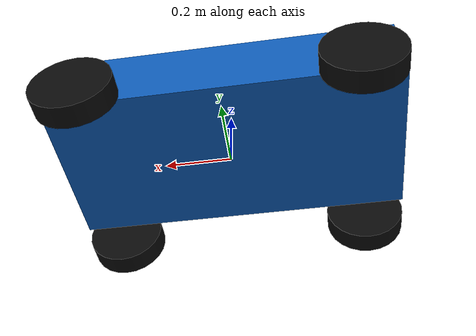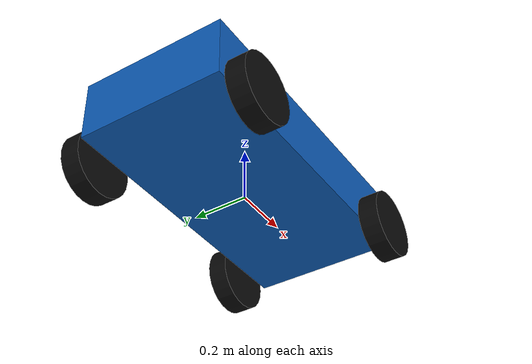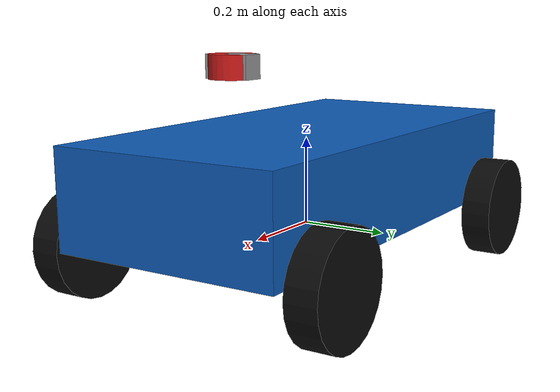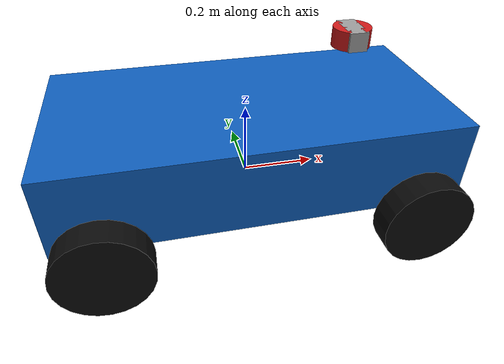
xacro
<?xml version="1.0"?>
<robot name="course_ackermann" xmlns:xacro="http://www.ros.org/wiki/xacro">

  <!-- размеры из models/course_ackermann/model.sdf, единицы СИ (м, кг) -->
  <xacro:property name="wheel_base" value="0.8"/>
  <xacro:property name="track" value="0.62"/>
  <xacro:property name="wheel_radius" value="0.12"/>
  <xacro:property name="wheel_width" value="0.07"/>
  <xacro:property name="wheel_mass" value="0.8"/>

  <xacro:property name="body_length" value="1.05"/>
  <xacro:property name="body_width" value="0.52"/>
  <xacro:property name="body_height" value="0.22"/>
  <xacro:property name="body_z" value="0.12"/>
  <xacro:property name="body_mass" value="12.0"/>

  <xacro:property name="knuckle_mass" value="0.2"/>
  <xacro:property name="steering_limit" value="0.55"/>

  <xacro:property name="sensor_x" value="0.28"/>
  <xacro:property name="sensor_z" value="0.38"/>
  <xacro:property name="sensor_size" value="0.05"/>
  <xacro:property name="sensor_mass" value="0.0333"/>

  <xacro:macro name="box_inertia" params="m x y z">
    <inertial>
      <mass value="${m}"/>
      <inertia ixx="${m * (y*y + z*z) / 12}" ixy="0" ixz="0"
               iyy="${m * (x*x + z*z) / 12}" iyz="0"
               izz="${m * (x*x + y*y) / 12}"/>
    </inertial>
  </xacro:macro>

  <!-- корпус: начало base_link на оси колёс -->
  <link name="base_link">
    <visual>
      <origin xyz="0 0 ${body_z}"/>
      <geometry><box size="${body_length} ${body_width} ${body_height}"/></geometry>
      <material name="blue"><color rgba="0.05 0.36 0.72 1"/></material>
    </visual>
    <collision>
      <origin xyz="0 0 ${body_z}"/>
      <geometry><box size="${body_length} ${body_width} ${body_height}"/></geometry>
    </collision>
    <inertial>
      <origin xyz="0 0 ${body_z}"/>
      <mass value="${body_mass}"/>
      <inertia ixx="0.55" ixy="0" ixz="0" iyy="1.10" iyz="0" izz="1.40"/>
    </inertial>
  </link>

  <!-- колесо: ось вращения y, цилиндр повёрнут на 90 градусов вокруг x -->
  <xacro:macro name="wheel" params="name parent x y">
    <link name="${name}_wheel">
      <visual>
        <origin rpy="${pi/2} 0 0"/>
        <geometry><cylinder radius="${wheel_radius}" length="${wheel_width}"/></geometry>
        <material name="black"><color rgba="0.04 0.04 0.04 1"/></material>
      </visual>
      <collision>
        <origin rpy="${pi/2} 0 0"/>
        <geometry><cylinder radius="${wheel_radius}" length="${wheel_width}"/></geometry>
      </collision>
      <inertial>
        <mass value="${wheel_mass}"/>
        <inertia
          ixx="${wheel_mass * (3*wheel_radius*wheel_radius + wheel_width*wheel_width) / 12}"
          ixy="0" ixz="0"
          iyy="${wheel_mass * wheel_radius*wheel_radius / 2}" iyz="0"
          izz="${wheel_mass * (3*wheel_radius*wheel_radius + wheel_width*wheel_width) / 12}"/>
      </inertial>
    </link>
    <joint name="${name}_wheel_joint" type="continuous">
      <parent link="${parent}"/>
      <child link="${name}_wheel"/>
      <origin xyz="${x} ${y} 0"/>
      <axis xyz="0 1 0"/>
    </joint>
  </xacro:macro>

  <!-- поворотный кулак переднего колеса -->
  <xacro:macro name="knuckle" params="name y">
    <link name="${name}_knuckle">
      <inertial>
        <mass value="${knuckle_mass}"/>
        <inertia ixx="0.001" ixy="0" ixz="0" iyy="0.001" iyz="0" izz="0.001"/>
      </inertial>
    </link>
    <joint name="${name}_steering_joint" type="revolute">
      <parent link="base_link"/>
      <child link="${name}_knuckle"/>
      <origin xyz="${wheel_base/2} ${y} 0"/>
      <axis xyz="0 0 1"/>
      <limit lower="${-steering_limit}" upper="${steering_limit}" effort="25" velocity="2.0"/>
    </joint>
  </xacro:macro>

  <xacro:knuckle name="front_left" y="${track/2}"/>
  <xacro:knuckle name="front_right" y="${-track/2}"/>
  <xacro:wheel name="front_left" parent="front_left_knuckle" x="0" y="0"/>
  <xacro:wheel name="front_right" parent="front_right_knuckle" x="0" y="0"/>
  <xacro:wheel name="rear_left" parent="base_link" x="${-wheel_base/2}" y="${track/2}"/>
  <xacro:wheel name="rear_right" parent="base_link" x="${-wheel_base/2}" y="${-track/2}"/>

  <!-- сенсоры: все три в одной точке, как в SDF -->
  <link name="camera_link">
    <visual>
      <geometry><box size="${sensor_size} ${sensor_size * 2} ${sensor_size}"/></geometry>
      <material name="gray"><color rgba="0.6 0.6 0.6 1"/></material>
    </visual>
    <collision>
      <geometry><box size="${sensor_size} ${sensor_size * 2} ${sensor_size}"/></geometry>
    </collision>
    <xacro:box_inertia m="${sensor_mass}" x="${sensor_size}" y="${sensor_size * 2}" z="${sensor_size}"/>
  </link>
  <joint name="camera_joint" type="fixed">
    <parent link="base_link"/>
    <child link="camera_link"/>
    <origin xyz="${sensor_x} 0 ${sensor_z}"/>
  </joint>

  <link name="lidar_link">
    <visual>
      <geometry><cylinder radius="${sensor_size}" length="${sensor_size}"/></geometry>
      <material name="red"><color rgba="0.8 0.1 0.1 1"/></material>
    </visual>
    <collision>
      <geometry><cylinder radius="${sensor_size}" length="${sensor_size}"/></geometry>
    </collision>
    <xacro:box_inertia m="${sensor_mass}" x="${sensor_size * 2}" y="${sensor_size * 2}" z="${sensor_size}"/>
  </link>
  <joint name="lidar_joint" type="fixed">
    <parent link="base_link"/>
    <child link="lidar_link"/>
    <origin xyz="${sensor_x} 0 ${sensor_z}"/>
  </joint>

  <link name="imu_link">
    <visual>
      <geometry><box size="${sensor_size / 2} ${sensor_size / 2} ${sensor_size / 2}"/></geometry>
      <material name="green"><color rgba="0.1 0.7 0.2 1"/></material>
    </visual>
    <collision>
      <geometry><box size="${sensor_size / 2} ${sensor_size / 2} ${sensor_size / 2}"/></geometry>
    </collision>
    <xacro:box_inertia m="${sensor_mass}" x="${sensor_size / 2}" y="${sensor_size / 2}" z="${sensor_size / 2}"/>
  </link>
  <joint name="imu_joint" type="fixed">
    <parent link="base_link"/>
    <child link="imu_link"/>
    <origin xyz="${sensor_x} 0 ${sensor_z}"/>
  </joint>

</robot>
